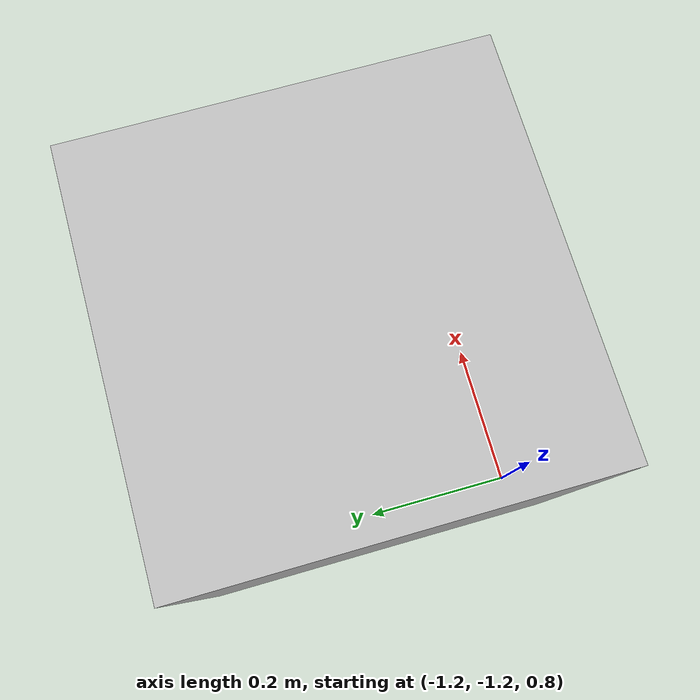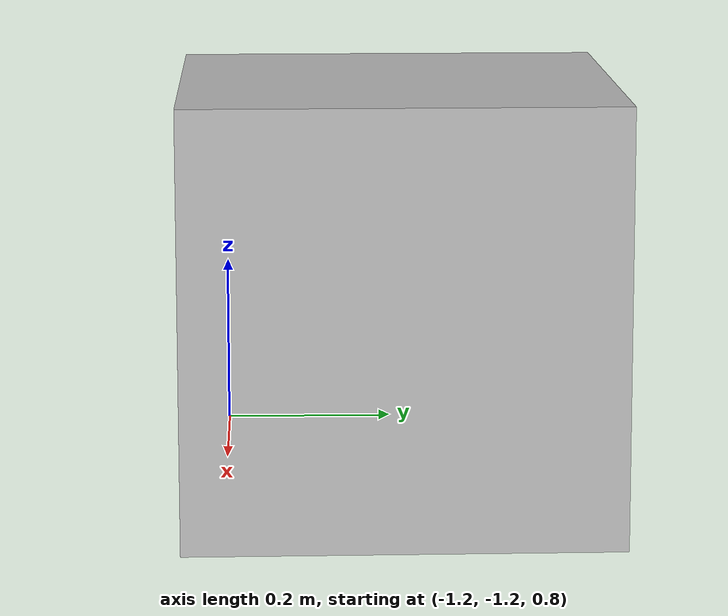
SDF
<sdf version="1.6">
  <model name="animated_box">
    <static>false</static>
    <pose>-1 -1 1.0 0 0 0</pose>
    <link name="link">
      <inertial>
        <mass>1.0</mass>
        <inertia>
          <ixx>0.01</ixx><ixy>0</ixy><ixz>0</ixz>
          <iyy>0.01</iyy><iyz>0</iyz><izz>0.01</izz>
        </inertia>
      </inertial>
      <collision name="col">
        <geometry><box><size>0.5 0.5 0.5</size></box></geometry>
      </collision>
      <visual name="vis">
        <geometry><box><size>0.5 0.5 0.5</size></box></geometry>
      </visual>
    </link>

    <!-- Optional: motion via cmd_vel -->
    <!-- Replace filename if you prefer another plugin -->
    <plugin name="animated_box_move" filename="libgazebo_ros_planar_move.so">
      <robotNamespace>/animated_box</robotNamespace>
      <commandTopic>cmd_vel</commandTopic>
      <odometryTopic>odom</odometryTopic>
      <odometryFrame>odom</odometryFrame>
    </plugin>
  </model>
</sdf>
